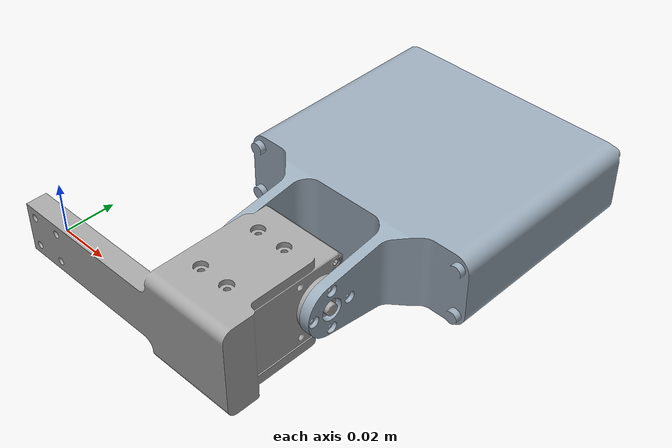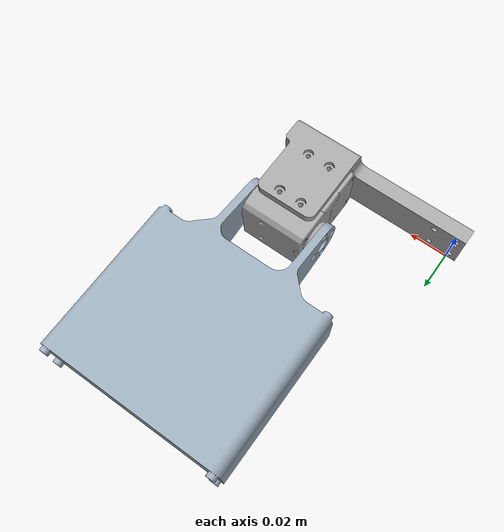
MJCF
<mujoco model="sysID_XM430">
  <compiler angle="radian" autolimits="true" />
  <asset>
    <mesh name="xm430_visual" file="../assemblies/sysID_XM430/meshes/xm430_visual.stl" />
    <mesh name="arm_430_visual" file="../assemblies/sysID_XM430/meshes/arm_430_visual.stl" />
  </asset>
  <worldbody>
    <geom rgba="0.647059 0.647059 0.647059 1" mesh="xm430_visual" class="visual" />
    <body name="arm_430" pos="0.093 0.0326999 0.0055694" quat="0.5 -0.5 0.5 -0.5">
      <inertial pos="-0.0700005 0 -0.019" quat="0.707107 0 0 0.707107" mass="0.0945" diaginertia="0.000176057 9.76865e-05 9.75621e-05" />
      <joint name="joint_0" pos="0 0 0" axis="0 0 1" limited="true" range="-1.5708 1.5708" damping="0.369" armature="0.002" frictionloss="0.001" />
      <geom rgba="0.604714 0.667227 0.72422 1" mesh="arm_430_visual" class="visual" />
    </body>
  </worldbody>
  <actuator>
    <position name="joint_0" joint="joint_0" kp="18.75" ctrlrange="-1.5708 1.5708" class="XM430" />
  </actuator>
  <default>
    <default class="XM430">
      <position forcerange="-3 3" />
    </default>
    <default class="XC430">
      <position forcerange="-2 2" />
    </default>
    <default class="2XC430">
      <position forcerange="-2 2" />
    </default>
    <default class="XL430">
      <position forcerange="-2 2" />
    </default>
    <default class="2XL430">
      <position forcerange="-2 2" />
    </default>
    <default class="XC330">
      <position forcerange="-1 1" />
    </default>
    <geom type="mesh" solref=".004 1" />
    <default class="visual">
      <geom contype="0" conaffinity="0" group="2" />
    </default>
    <default class="collision">
      <geom group="3" />
    </default>
  </default>
  <contact />
</mujoco>
